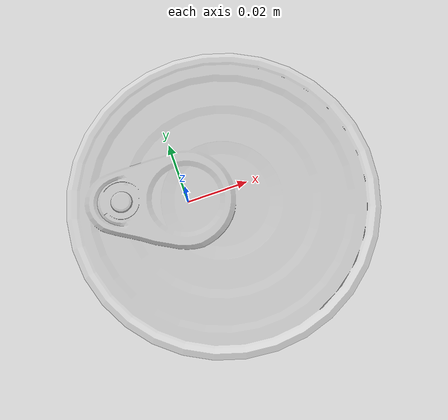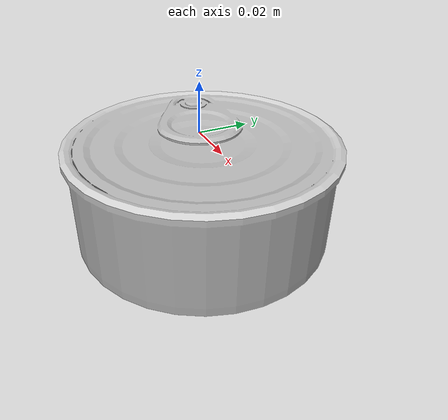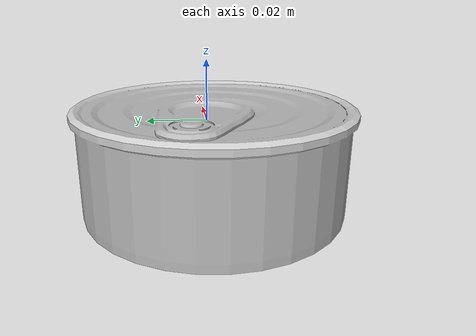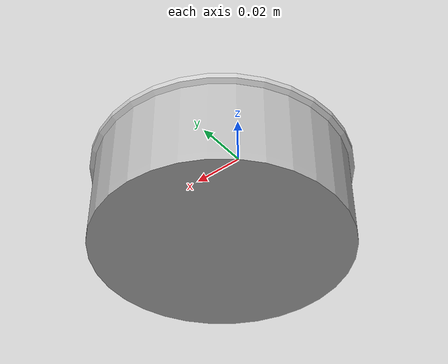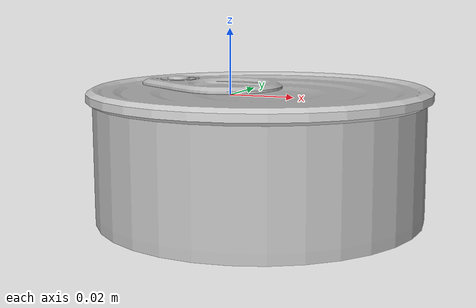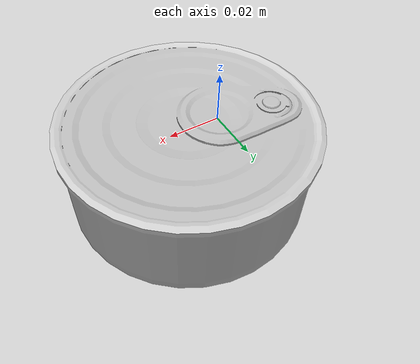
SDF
<?xml version='1.0'?>
<sdf version='1.6'>
  <model name='tuna_can'>
    <link name='link_0'>
      <inertial>
        <mass>0.128</mass> <!-- Realistic aluminum can: ~128g -->
        <inertia>
          <ixx>0.0001</ixx> <ixy>0</ixy> <ixz>0</ixz>
          <iyy>0.0001</iyy> <iyz>0</iyz>
          <izz>0.00005</izz>
        </inertia>
      </inertial>

      <!-- Add velocity decay for realistic water motion -->
      <velocity_decay>
        <linear>0.8</linear>
        <angular>0.9</angular>
      </velocity_decay>

      <visual name='visual'>
        <pose frame=''>0 0 0 0 0 0</pose>
        <geometry>
          <mesh>
            <uri>model://tuna_can/tuna_can.dae</uri>
            <scale>1 1 1</scale>
          </mesh>
        </geometry>
        <material>
          <script>
            <uri>file://model://tuna_can/materials/scripts/TunaCan.material</uri>
            <name>TunaCan</name>
          </script>
        </material>
        <cast_shadows>1</cast_shadows>
        <transparency>0.0</transparency> <!-- Completely opaque -->
      </visual>

      <collision name='collision'>
        <laser_retro>0</laser_retro>
        <max_contacts>10</max_contacts>
        <pose frame=''>0 0 0 0 0 0</pose>
        <geometry>
          <mesh>
            <uri>model://tuna_can/tuna_can.dae</uri>
            <scale>1 1 1</scale>
          </mesh>
        </geometry>

        <!-- Add drag for realistic water resistance -->
        <surface>
          <friction>
            <ode>
              <mu>0.3</mu>
              <mu2>0.3</mu2>
            </ode>
          </friction>
        </surface>
      </collision>
    </link>

    <!-- VRX Buoyancy Plugin for realistic floating -->
    <plugin name="vrx::PolyhedraBuoyancyDrag" filename="libvrx_buoyancy.so">
      <wave_model>ocean_waves</wave_model>
      <fluid_level>0.0</fluid_level>
      <fluid_density>1025.0</fluid_density>
      <linear_drag>25.0</linear_drag>
      <angular_drag>2.0</angular_drag>
      <buoyancy>
        <link_name>link_0</link_name>
        <pose>0 0 0 0 0 0</pose>
        <geometry>
          <cylinder>
            <radius>0.040</radius>
            <length>0.032</length>
          </cylinder>
        </geometry>
      </buoyancy>
    </plugin>

    <static>0</static> <!-- Enable physics -->
    <allow_auto_disable>1</allow_auto_disable>
  </model>
</sdf>
